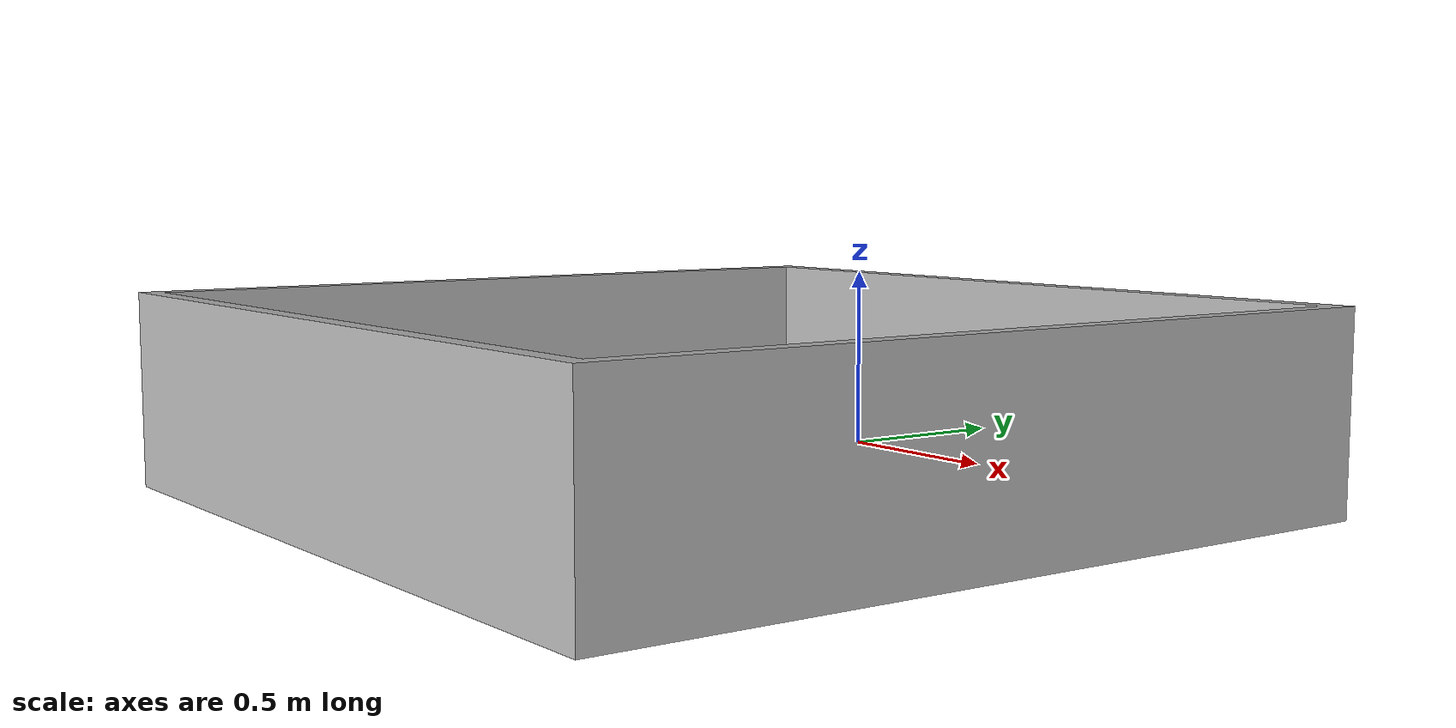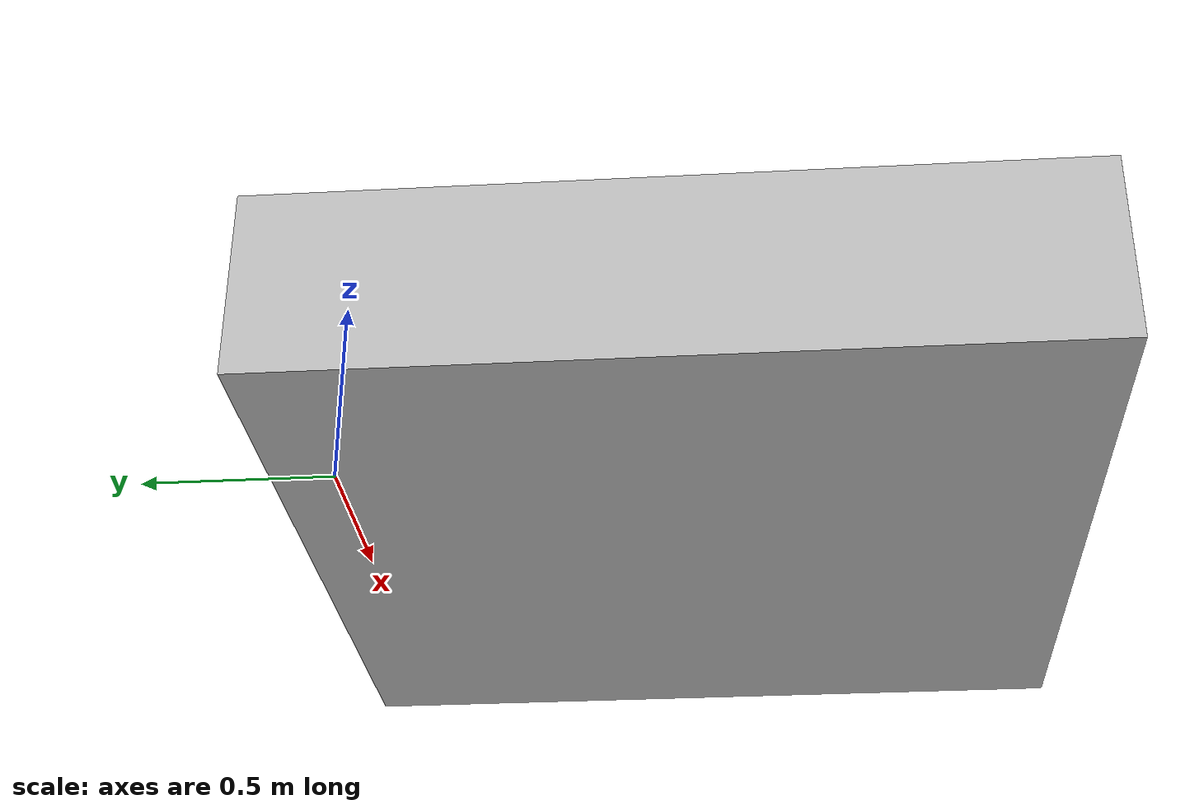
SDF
<?xml version="1.0" ?>
<sdf version="1.5">
    <model name="tokuron_world">
    <pose>0 0 0.24 0 0 0</pose>
    <static>true</static>
    <link name="link">
      <collision name="collision">
        <geometry>
	  <mesh>
	    <scale> 0.001 0.001 0.001</scale>
            <uri>model://tokuron/meshes/world.dae</uri>
          </mesh>
        </geometry>
      </collision>

      <visual name="visual">
        <geometry>
          <mesh>
	    <scale> 0.001 0.001 0.001</scale>
            <uri>model://tokuron/meshes/world.dae</uri>
          </mesh>
        </geometry>
      </visual>
    </link>
  </model>
</sdf>
